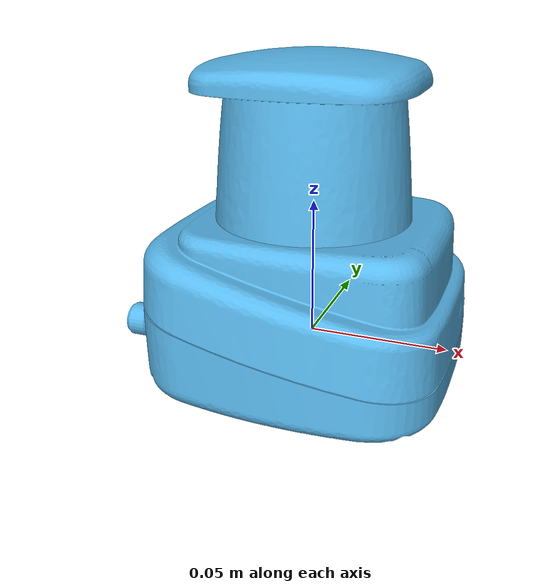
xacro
<?xml version="1.0"?>
<robot xmlns:xacro="http://wiki.ros.org/xacro" name="r2300" >
    <xacro:include filename="$(find pf_description)/urdf/r2000.urdf.xacro" />

    <!-- create a virtual root link -->
    <link name="world" />

    <!-- instantiate r2300 macro -->
    <xacro:r2000 prefix="" />

    <!-- connect world link to scanner base_link -->
    <joint name="world_joint" type="fixed">
        <parent link="world" />
        <child link = "base_link" />
        <origin xyz="0.0 0.0 0.0" rpy="0.0 0.0 0.0" />
    </joint>
</robot>

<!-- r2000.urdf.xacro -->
<robot xmlns:xacro="http://ros.org/wiki/xacro">

    <xacro:macro name="r2000" params="prefix" >
        <link name="${prefix}base_link" >
            <visual>
                <origin xyz="0 0 0" rpy="1.57 0 1.57" />
                <geometry>
                    <mesh filename="package://pf_description/meshes/R2000.stl" scale="0.001 0.001 0.001" />
                </geometry>
            </visual>

            <collision>
                <origin xyz="0 0 0.045" rpy="0 0 0" />
                <geometry>
                    <box size="0.108 0.118 0.128" />
                </geometry>
            </collision>
        </link>
    </xacro:macro>
</robot>
